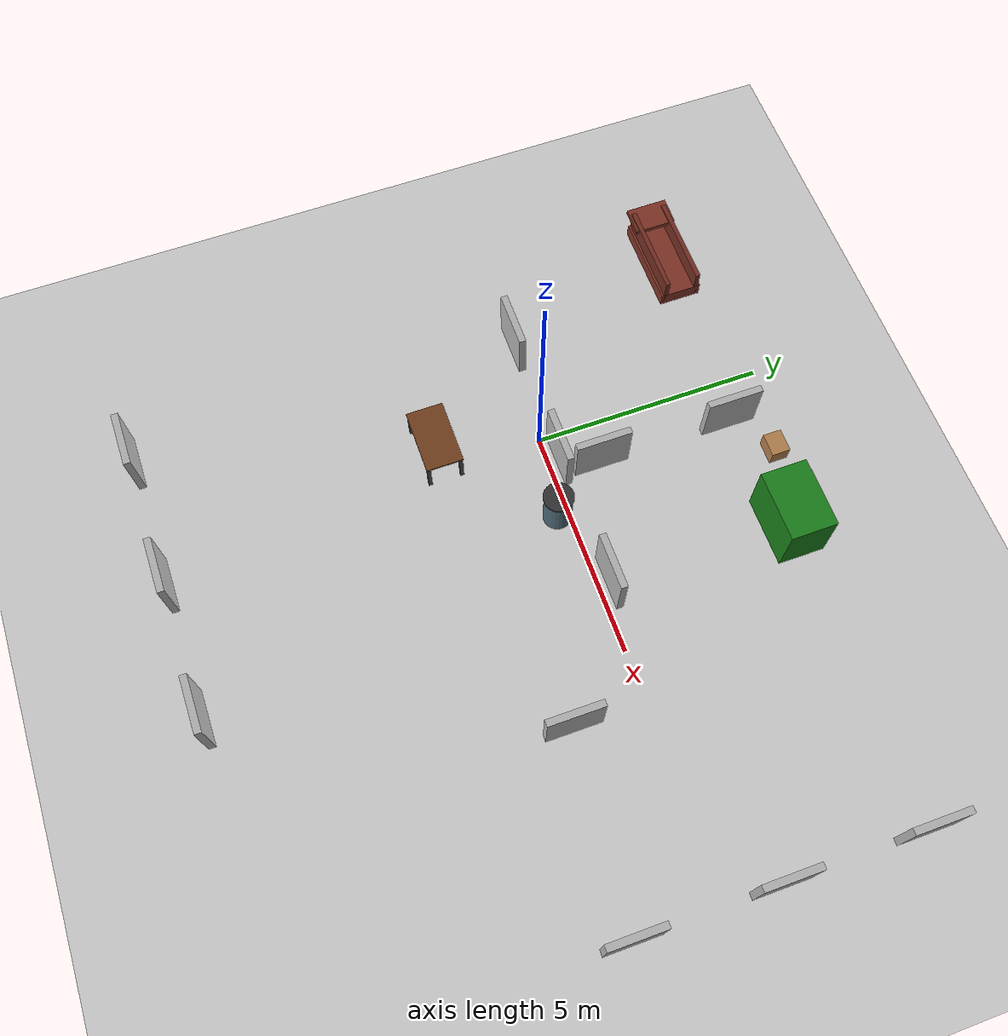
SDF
<sdf version='1.10'>
  <world name='empty'>
    <physics name='1ms' type='ignored'>
      <max_step_size>0.001</max_step_size>
      <real_time_factor>1</real_time_factor>
      <real_time_update_rate>1000</real_time_update_rate>
    </physics>
    <plugin name='gz::sim::systems::Physics' filename='gz-sim-physics-system'/>
    <plugin name='gz::sim::systems::UserCommands' filename='gz-sim-user-commands-system'/>
    <plugin name='gz::sim::systems::SceneBroadcaster' filename='gz-sim-scene-broadcaster-system'/>
    <plugin name='gz::sim::systems::Contact' filename='gz-sim-contact-system'/>
    <plugin name='gz::sim::systems::Sensors' filename='gz-sim-sensors-system'>
      <render_engine>ogre2</render_engine>
    </plugin>
    <plugin name='gz::sim::systems::Imu' filename='gz-sim-imu-system'/>
    <gravity>0 0 -9.8000000000000007</gravity>
    <magnetic_field>5.5644999999999998e-06 2.2875799999999999e-05 -4.2388400000000002e-05</magnetic_field>
    <atmosphere type='adiabatic'/>
    <scene>
      <ambient>0.400000006 0.400000006 0.400000006 1</ambient>
      <background>0.699999988 0.699999988 0.699999988 1</background>
      <shadows>true</shadows>
    </scene>
    <model name='ground_plane'>
      <static>true</static>
      <link name='link'>
        <collision name='collision'>
          <geometry>
            <plane>
              <normal>0 0 1</normal>
              <size>100 100</size>
            </plane>
          </geometry>
          <surface>
            <friction>
              <ode>
                <mu>50</mu>
              </ode>
            </friction>
            <bounce/>
            <contact/>
          </surface>
        </collision>
        <visual name='visual'>
          <geometry>
            <plane>
              <normal>0 0 1</normal>
              <size>100 100</size>
            </plane>
          </geometry>
          <material>
            <ambient>0.800000012 0.800000012 0.800000012 1</ambient>
            <diffuse>0.800000012 0.800000012 0.800000012 1</diffuse>
            <specular>0.800000012 0.800000012 0.800000012 1</specular>
          </material>
        </visual>
        <pose>0 0 0 0 0 0</pose>
        <inertial>
          <pose>0 0 0 0 0 0</pose>
          <mass>1</mass>
          <inertia>
            <ixx>1</ixx>
            <ixy>0</ixy>
            <ixz>0</ixz>
            <iyy>1</iyy>
            <iyz>0</iyz>
            <izz>1</izz>
          </inertia>
        </inertial>
        <enable_wind>false</enable_wind>
      </link>
      <pose>0 0 0 0 0 0</pose>
      <self_collide>false</self_collide>
    </model>
    <include>
      <uri>model://nist_maze_wall_120</uri>
      <name>nist_maze_wall_120</name>
      <pose>3.500194787979126 0.23359900712966919 0 0 0 0</pose>
    </include>
    <include>
      <uri>model://nist_maze_wall_120</uri>
      <name>nist_maze_wall_120_0</name>
      <pose>0.55775178312215412 0.23700515675109912 0 0 0 0</pose>
    </include>
    <include>
      <uri>model://nist_maze_wall_120</uri>
      <name>nist_maze_wall_120_1</name>
      <pose>-2.3677970179523875 0.24645153372856043 0 0 0 0</pose>
    </include>
    <include>
      <uri>model://nist_maze_wall_120</uri>
      <name>nist_maze_wall_120_2</name>
      <pose>3.5200865090295048 -8.2388156179689531 0 0 0 0</pose>
    </include>
    <include>
      <uri>model://nist_maze_wall_120</uri>
      <name>nist_maze_wall_120_3</name>
      <pose>0.56549686035177915 -8.2467648225739651 0 0 0 0</pose>
    </include>
    <include>
      <uri>model://nist_maze_wall_120</uri>
      <name>nist_maze_wall_120_4</name>
      <pose>-2.3681797162680551 -8.2544366856634142 0 0 0 0</pose>
    </include>
    <include>
      <uri>model://nist_maze_wall_120</uri>
      <name>nist_maze_wall_120_5</name>
      <pose>6.0994014739990234 -1.5353339910507202 0 0 0 1.5700000042340219</pose>
    </include>
    <include>
      <uri>model://nist_maze_wall_120</uri>
      <name>nist_maze_wall_120_5_1</name>
      <pose>10.162989131829523 3.988061079102418 0 0 0 1.5700000841906603</pose>
    </include>
    <include>
      <uri>model://nist_maze_wall_120</uri>
      <name>nist_maze_wall_120_5_2</name>
      <pose>10.154943304459902 1.0311892009463999 0 0 0 1.5700000841906603</pose>
    </include>
    <include>
      <uri>model://nist_maze_wall_120</uri>
      <name>nist_maze_wall_120_5_3</name>
      <pose>10.152925969603256 -1.9336369865301308 0 0 0 1.5700000841906603</pose>
    </include>
    <include>
      <uri>model://nist_maze_wall_120</uri>
      <name>nist_maze_wall_120_5_4</name>
      <pose>0.95662188637031775 3.9433657197461081 0 0 0 1.5700000841906603</pose>
    </include>
    <include>
      <uri>model://nist_maze_wall_120</uri>
      <name>nist_maze_wall_120_5_5</name>
      <pose>0.94719756250117015 1.0309010957460973 0 0 0 1.5700000841906603</pose>
    </include>
    <include>
      <uri>model://Sofa</uri>
      <name>Sofa</name>
      <pose>-3.1086053821535606 4.0736955014647362 0.00011990061410731364 7.8247314222776772e-09 5.380270426149201e-09 1.6201394625637979e-11</pose>
    </include>
    <include>
      <uri>model://Table</uri>
      <name>Table</name>
      <pose>-0.47356671228541369 -2.1649002497828573 0 0 0 0</pose>
    </include>
    <include>
      <uri>model://dumpster</uri>
      <name>Dumpster</name>
      <pose>3.5524714377709055 4.1681146441410313 0.0013765659918935282 -6.1375696278466861e-08 -3.8407848316582548e-08 -8.5652453595490297e-15</pose>
    </include>
    <include>
      <uri>model://cardboard_box</uri>
      <name>cardboard_box</name>
      <pose>1.8746377107091465 4.644005466377882 0.14999943493130527 1.2642492757207745e-19 -5.7627664156819206e-19 5.2001615265641397e-21</pose>
    </include>
    <include>
      <uri>model://first_2015_trash_can</uri>
      <name>first_2015_trash_can</name>
      <pose>1.871824026104721 -0.29980108142421835 -2.6498350109364688e-06 -4.8691872295368032e-07 1.1942776831939006e-05 -0.0058451011481388373</pose>
    </include>
    <light name='sun' type='directional'>
      <pose>0 0 10 0 0 0</pose>
      <cast_shadows>true</cast_shadows>
      <intensity>1</intensity>
      <direction>-0.5 0.10000000000000001 -0.90000000000000002</direction>
      <diffuse>0.800000012 0.800000012 0.800000012 1</diffuse>
      <specular>0.200000003 0.200000003 0.200000003 1</specular>
      <attenuation>
        <range>1000</range>
        <linear>0.01</linear>
        <constant>0.90000000000000002</constant>
        <quadratic>0.001</quadratic>
      </attenuation>
      <spot>
        <inner_angle>0</inner_angle>
        <outer_angle>0</outer_angle>
        <falloff>0</falloff>
      </spot>
    </light>
  </world>
</sdf>

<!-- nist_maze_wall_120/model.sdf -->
<sdf version="1.10">
  <model name="nist_maze_wall_120">
    <static>true</static>
    <link name="wall">
      <pose>0 0 0.6 0 0 0</pose>
      <collision name="collision">
        <geometry>
          <box>
            <size>1.2 0.15 1.2</size>
          </box>
        </geometry>
        <surface>
          <friction>
            <ode>
              <mu>1.0</mu>
              <mu2>1.0</mu2>
            </ode>
          </friction>
        </surface>
      </collision>
      <visual name="visual">
        <geometry>
          <box>
            <size>1.2 0.15 1.2</size>
          </box>
        </geometry>
        <material>
          <ambient>0.6 0.6 0.6 1</ambient>
          <diffuse>0.7 0.7 0.7 1</diffuse>
          <specular>0.3 0.3 0.3 1</specular>
        </material>
      </visual>
      <inertial>
        <mass>25.0</mass>
        <inertia>
          <ixx>1.0</ixx>
          <iyy>1.0</iyy>
          <izz>1.0</izz>
          <ixy>0</ixy>
          <ixz>0</ixz>
          <iyz>0</iyz>
        </inertia>
      </inertial>
    </link>
  </model>
</sdf>

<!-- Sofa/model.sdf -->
<sdf version="1.10">
  <model name="Sofa">
    <static>true</static>
    <link name="sofa_body">
      <pose>0 0 0.4 0 0 0</pose>
      <collision name="collision">
        <geometry>
          <box>
            <size>2.0 0.9 0.8</size>
          </box>
        </geometry>
      </collision>
      <visual name="seat">
        <pose>0 0 0.15 0 0 0</pose>
        <geometry>
          <box>
            <size>2.0 0.9 0.3</size>
          </box>
        </geometry>
        <material>
          <ambient>0.4 0.15 0.1 1</ambient>
          <diffuse>0.5 0.2 0.15 1</diffuse>
          <specular>0.1 0.05 0.05 1</specular>
        </material>
      </visual>
      <visual name="back">
        <pose>-0.85 0 0.6 0 1.57079632679 0</pose>
        <geometry>
          <box>
            <size>0.1 0.9 0.6</size>
          </box>
        </geometry>
        <material>
          <ambient>0.4 0.15 0.1 1</ambient>
          <diffuse>0.5 0.2 0.15 1</diffuse>
          <specular>0.1 0.05 0.05 1</specular>
        </material>
      </visual>
      <visual name="arm_left">
        <pose>0 0.35 0.4 0 0 0</pose>
        <geometry>
          <box>
            <size>2.0 0.1 0.6</size>
          </box>
        </geometry>
        <material>
          <ambient>0.35 0.13 0.09 1</ambient>
          <diffuse>0.45 0.18 0.13 1</diffuse>
          <specular>0.08 0.04 0.04 1</specular>
        </material>
      </visual>
      <visual name="arm_right">
        <pose>0 -0.35 0.4 0 0 0</pose>
        <geometry>
          <box>
            <size>2.0 0.1 0.6</size>
          </box>
        </geometry>
        <material>
          <ambient>0.35 0.13 0.09 1</ambient>
          <diffuse>0.45 0.18 0.13 1</diffuse>
          <specular>0.08 0.04 0.04 1</specular>
        </material>
      </visual>
      <inertial>
        <mass>20.0</mass>
        <inertia>
          <ixx>1.0</ixx>
          <iyy>1.0</iyy>
          <izz>1.0</izz>
          <ixy>0</ixy>
          <ixz>0</ixz>
          <iyz>0</iyz>
        </inertia>
      </inertial>
    </link>
  </model>
</sdf>

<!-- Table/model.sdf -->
<sdf version="1.10">
  <model name="Table">
    <static>true</static>
    <link name="table">
      <collision name="collision">
        <geometry>
          <box>
            <size>1.4 0.8 0.78</size>
          </box>
        </geometry>
      </collision>
      <visual name="top">
        <pose>0 0 0.75 0 0 0</pose>
        <geometry>
          <box>
            <size>1.4 0.8 0.05</size>
          </box>
        </geometry>
        <material>
          <ambient>0.35 0.2 0.1 1</ambient>
          <diffuse>0.45 0.25 0.12 1</diffuse>
          <specular>0.1 0.08 0.05 1</specular>
        </material>
      </visual>
      <visual name="leg_fl">
        <pose>0.65 0.35 0.375 0 0 0</pose>
        <geometry>
          <box>
            <size>0.08 0.08 0.7</size>
          </box>
        </geometry>
        <material>
          <ambient>0.2 0.2 0.2 1</ambient>
          <diffuse>0.3 0.3 0.3 1</diffuse>
        </material>
      </visual>
      <visual name="leg_fr">
        <pose>0.65 -0.35 0.375 0 0 0</pose>
        <geometry>
          <box>
            <size>0.08 0.08 0.7</size>
          </box>
        </geometry>
        <material>
          <ambient>0.2 0.2 0.2 1</ambient>
          <diffuse>0.3 0.3 0.3 1</diffuse>
        </material>
      </visual>
      <visual name="leg_rl">
        <pose>-0.65 0.35 0.375 0 0 0</pose>
        <geometry>
          <box>
            <size>0.08 0.08 0.7</size>
          </box>
        </geometry>
        <material>
          <ambient>0.2 0.2 0.2 1</ambient>
          <diffuse>0.3 0.3 0.3 1</diffuse>
        </material>
      </visual>
      <visual name="leg_rr">
        <pose>-0.65 -0.35 0.375 0 0 0</pose>
        <geometry>
          <box>
            <size>0.08 0.08 0.7</size>
          </box>
        </geometry>
        <material>
          <ambient>0.2 0.2 0.2 1</ambient>
          <diffuse>0.3 0.3 0.3 1</diffuse>
        </material>
      </visual>
      <inertial>
        <mass>15.0</mass>
        <inertia>
          <ixx>1.0</ixx>
          <iyy>1.0</iyy>
          <izz>1.0</izz>
          <ixy>0</ixy>
          <ixz>0</ixz>
          <iyz>0</iyz>
        </inertia>
      </inertial>
    </link>
  </model>
</sdf>

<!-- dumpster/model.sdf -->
<sdf version="1.10">
  <model name="dumpster">
    <static>true</static>
    <link name="body">
      <pose>0 0 0.65 0 0 0</pose>
      <collision name="collision">
        <geometry>
          <box>
            <size>1.5 1.0 1.3</size>
          </box>
        </geometry>
      </collision>
      <visual name="visual">
        <geometry>
          <box>
            <size>1.5 1.0 1.3</size>
          </box>
        </geometry>
        <material>
          <ambient>0.1 0.4 0.1 1</ambient>
          <diffuse>0.1 0.5 0.1 1</diffuse>
          <specular>0.05 0.2 0.05 1</specular>
        </material>
      </visual>
      <inertial>
        <mass>60.0</mass>
        <inertia>
          <ixx>1.0</ixx>
          <iyy>1.0</iyy>
          <izz>1.0</izz>
          <ixy>0</ixy>
          <ixz>0</ixz>
          <iyz>0</iyz>
        </inertia>
      </inertial>
    </link>
  </model>
</sdf>

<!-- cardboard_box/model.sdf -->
<sdf version="1.10">
  <model name="cardboard_box">
    <static>false</static>
    <link name="box">
      <collision name="collision">
        <geometry>
          <box>
            <size>0.5 0.4 0.4</size>
          </box>
        </geometry>
        <surface>
          <bounce/>
          <friction>
            <ode>
              <mu>0.8</mu>
              <mu2>0.8</mu2>
            </ode>
          </friction>
        </surface>
      </collision>
      <visual name="visual">
        <geometry>
          <box>
            <size>0.5 0.4 0.4</size>
          </box>
        </geometry>
        <material>
          <ambient>0.6 0.45 0.25 1</ambient>
          <diffuse>0.7 0.5 0.3 1</diffuse>
          <specular>0.2 0.15 0.05 1</specular>
        </material>
      </visual>
      <inertial>
        <mass>2.0</mass>
        <inertia>
          <ixx>0.016</ixx>
          <iyy>0.012</iyy>
          <izz>0.020</izz>
          <ixy>0</ixy>
          <ixz>0</ixz>
          <iyz>0</iyz>
        </inertia>
      </inertial>
    </link>
  </model>
</sdf>

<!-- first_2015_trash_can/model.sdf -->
<sdf version="1.10">
  <model name="first_2015_trash_can">
    <static>false</static>
    <link name="trash_can">
      <pose>0 0 0.72 0 0 0</pose>
      <collision name="collision">
        <geometry>
          <cylinder>
            <radius>0.3</radius>
            <length>0.9</length>
          </cylinder>
        </geometry>
      </collision>
      <visual name="body">
        <geometry>
          <cylinder>
            <radius>0.3</radius>
            <length>0.9</length>
          </cylinder>
        </geometry>
        <material>
          <ambient>0.2 0.2 0.2 1</ambient>
          <diffuse>0.3 0.4 0.45 1</diffuse>
          <specular>0.1 0.1 0.1 1</specular>
        </material>
      </visual>
      <visual name="lid">
        <pose>0 0 0.48 0 0 0</pose>
        <geometry>
          <cylinder>
            <radius>0.32</radius>
            <length>0.04</length>
          </cylinder>
        </geometry>
        <material>
          <ambient>0.15 0.15 0.15 1</ambient>
          <diffuse>0.2 0.2 0.2 1</diffuse>
        </material>
      </visual>
      <inertial>
        <mass>8.0</mass>
        <inertia>
          <ixx>0.35</ixx>
          <iyy>0.35</iyy>
          <izz>0.20</izz>
          <ixy>0</ixy>
          <ixz>0</ixz>
          <iyz>0</iyz>
        </inertia>
      </inertial>
    </link>
  </model>
</sdf>
